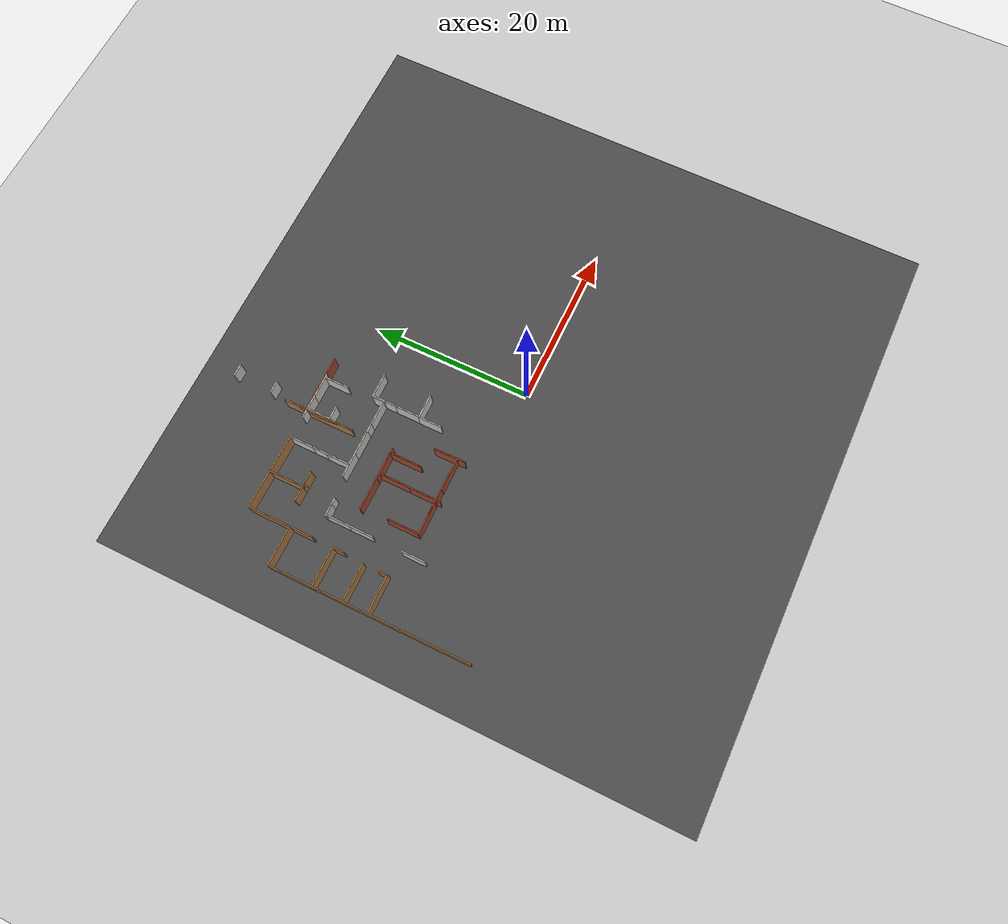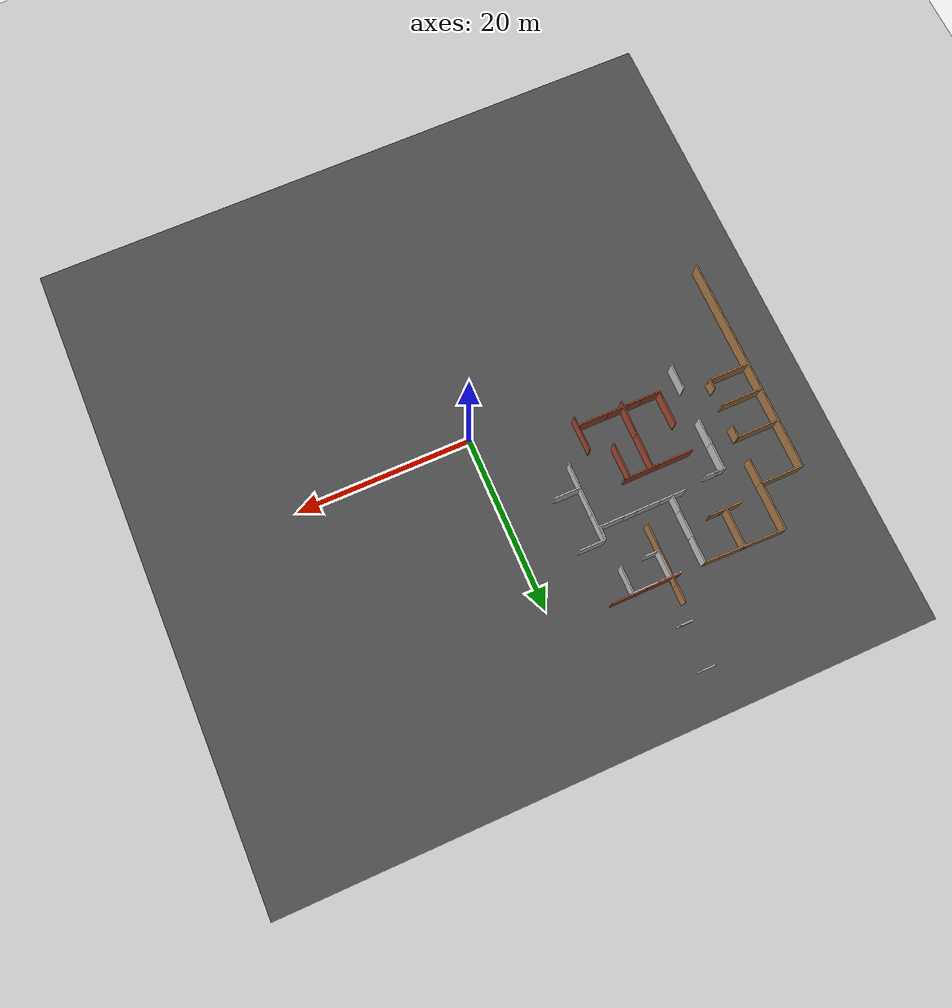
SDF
<sdf version="1.6">
 <world name="default">
  <model name="ground_plane">
   <static>1</static>
   <link name="link">
    <collision name="collision">
     <geometry><plane><normal>0 0 1</normal><size>100 100</size></plane></geometry>
     <surface><friction><ode><mu>100</mu><mu2>50</mu2></ode></friction></surface>
    </collision>
    <visual name="visual">
     <cast_shadows>0</cast_shadows>
     <geometry><plane><normal>0 0 1</normal><size>100 100</size></plane></geometry>
     <material>
      <script><uri>file://media/materials/scripts/gazebo.material</uri><name>Gazebo/Grey</name></script>
     </material>
    </visual>
   </link>
  </model>
  <model name="asphalt_plane">
   <static>1</static>
   <link name="link">
    <collision name="collision"><geometry><box><size>74 74 0.1</size></box></geometry></collision>
    <visual name="visual">
     <cast_shadows>0</cast_shadows>
     <geometry><box><size>74 74 0.1</size></box></geometry>
     <material>
      <script>
       <uri>model://asphalt_plane/materials/scripts</uri>
       <uri>model://asphalt_plane/materials/textures</uri>
       <name>vrc/asphalt</name>
      </script>
     </material>
    </visual>
   </link>
  </model>
  <model name="concrete_wall">
   <pose>-8.48668 14.4739 0 0 -0 0</pose>
   <link name="Wall_0">
    <collision name="Wall_0_Collision">
     <geometry><box><size>3 0.15 2.5</size></box></geometry>
     <pose>0 0 1.25 0 -0 0</pose>
    </collision>
    <visual name="Wall_0_Visual">
     <pose>0 0 1.25 0 -0 0</pose>
     <geometry><box><size>3 0.15 2.5</size></box></geometry>
     <material>
      <script><uri>file://media/materials/scripts/gazebo.material</uri><name>Gazebo/CeilingTiled</name></script>
      <ambient>1 1 1 1</ambient>
     </material>
     <meta><layer>0</layer></meta>
    </visual>
    <pose>0 0 0 0 -0 1.5708</pose>
   </link>
   <static>1</static>
  </model>
  <model name="concrete_wall_0">
   <pose>-8.48804 11.5232 0 0 -0 0</pose>
   <link name="Wall_0">
    <collision name="Wall_0_Collision">
     <geometry><box><size>3 0.15 2.5</size></box></geometry>
     <pose>0 0 1.25 0 -0 0</pose>
    </collision>
    <visual name="Wall_0_Visual">
     <pose>0 0 1.25 0 -0 0</pose>
     <geometry><box><size>3 0.15 2.5</size></box></geometry>
     <material>
      <script><uri>file://media/materials/scripts/gazebo.material</uri><name>Gazebo/CeilingTiled</name></script>
      <ambient>1 1 1 1</ambient>
     </material>
     <meta><layer>0</layer></meta>
    </visual>
    <pose>0 0 0 0 -0 1.5708</pose>
   </link>
   <static>1</static>
  </model>
  <model name="concrete_wall_6_clone_6">
   <pose>-7.05086 9.93464 0 0 -0 1.57079</pose>
   <link name="Wall_0">
    <collision name="Wall_0_Collision">
     <geometry><box><size>3 0.15 2.5</size></box></geometry>
     <pose>0 0 1.25 0 -0 0</pose>
    </collision>
    <visual name="Wall_0_Visual">
     <pose>0 0 1.25 0 -0 0</pose>
     <geometry><box><size>3 0.15 2.5</size></box></geometry>
     <material>
      <script><uri>file://media/materials/scripts/gazebo.material</uri><name>Gazebo/CeilingTiled</name></script>
      <ambient>1 1 1 1</ambient>
     </material>
     <meta><layer>0</layer></meta>
    </visual>
    <pose>0 0 0 0 -0 1.5708</pose>
   </link>
   <static>1</static>
  </model>
  <model name="concrete_wall_6_clone_7">
   <pose>-7.08346 16.0324 0 0 -0 1.57079</pose>
   <link name="Wall_0">
    <collision name="Wall_0_Collision">
     <geometry><box><size>3 0.15 2.5</size></box></geometry>
     <pose>0 0 1.25 0 -0 0</pose>
    </collision>
    <visual name="Wall_0_Visual">
     <pose>0 0 1.25 0 -0 0</pose>
     <geometry><box><size>3 0.15 2.5</size></box></geometry>
     <material>
      <script><uri>file://media/materials/scripts/gazebo.material</uri><name>Gazebo/CeilingTiled</name></script>
      <ambient>1 1 1 1</ambient>
     </material>
     <meta><layer>0</layer></meta>
    </visual>
    <pose>0 0 0 0 -0 1.5708</pose>
   </link>
   <static>1</static>
  </model>
  <model name="concrete_wall_6_clone_9">
   <pose>-17.1164 14.5581 0 0 -0 1.57079</pose>
   <link name="Wall_0">
    <collision name="Wall_0_Collision">
     <geometry><box><size>3 0.15 2.5</size></box></geometry>
     <pose>0 0 1.25 0 -0 0</pose>
    </collision>
    <visual name="Wall_0_Visual">
     <pose>0 0 1.25 0 -0 0</pose>
     <geometry><box><size>3 0.15 2.5</size></box></geometry>
     <material>
      <script><uri>file://media/materials/scripts/gazebo.material</uri><name>Gazebo/CeilingTiled</name></script>
      <ambient>1 1 1 1</ambient>
     </material>
     <meta><layer>0</layer></meta>
    </visual>
    <pose>0 0 0 0 -0 1.5708</pose>
   </link>
   <static>1</static>
  </model>
  <model name="concrete_wall_6_clone_10">
   <pose>-14.1567 14.5575 0 0 -0 1.57079</pose>
   <link name="Wall_0">
    <collision name="Wall_0_Collision">
     <geometry><box><size>3 0.15 2.5</size></box></geometry>
     <pose>0 0 1.25 0 -0 0</pose>
    </collision>
    <visual name="Wall_0_Visual">
     <pose>0 0 1.25 0 -0 0</pose>
     <geometry><box><size>3 0.15 2.5</size></box></geometry>
     <material>
      <script><uri>file://media/materials/scripts/gazebo.material</uri><name>Gazebo/CeilingTiled</name></script>
      <ambient>1 1 1 1</ambient>
     </material>
     <meta><layer>0</layer></meta>
    </visual>
    <pose>0 0 0 0 -0 1.5708</pose>
   </link>
   <static>1</static>
  </model>
  <model name="concrete_wall_6_clone_11">
   <pose>-10.1743 14.5482 0 0 -0 1.57079</pose>
   <link name="Wall_0">
    <collision name="Wall_0_Collision">
     <geometry><box><size>3 0.15 2.5</size></box></geometry>
     <pose>0 0 1.25 0 -0 0</pose>
    </collision>
    <visual name="Wall_0_Visual">
     <pose>0 0 1.25 0 -0 0</pose>
     <geometry><box><size>3 0.15 2.5</size></box></geometry>
     <material>
      <script><uri>file://media/materials/scripts/gazebo.material</uri><name>Gazebo/CeilingTiled</name></script>
      <ambient>1 1 1 1</ambient>
     </material>
     <meta><layer>0</layer></meta>
    </visual>
    <pose>0 0 0 0 -0 1.5708</pose>
   </link>
   <static>1</static>
  </model>
  <model name="concrete_wall_6_clone_12">
   <pose>-10.0053 22.2075 0 0 -0 1.57079</pose>
   <link name="Wall_0">
    <collision name="Wall_0_Collision">
     <geometry><box><size>3 0.15 2.5</size></box></geometry>
     <pose>0 0 1.25 0 -0 0</pose>
    </collision>
    <visual name="Wall_0_Visual">
     <pose>0 0 1.25 0 -0 0</pose>
     <geometry><box><size>3 0.15 2.5</size></box></geometry>
     <material>
      <script><uri>file://media/materials/scripts/gazebo.material</uri><name>Gazebo/CeilingTiled</name></script>
      <ambient>1 1 1 1</ambient>
     </material>
     <meta><layer>0</layer></meta>
    </visual>
    <pose>0 0 0 0 -0 1.5708</pose>
   </link>
   <static>1</static>
  </model>
  <model name="concrete_wall_6_clone_13">
   <pose>-12.862 22.2193 0 0 -0 1.57079</pose>
   <link name="Wall_0">
    <collision name="Wall_0_Collision">
     <geometry><box><size>3 0.15 2.5</size></box></geometry>
     <pose>0 0 1.25 0 -0 0</pose>
    </collision>
    <visual name="Wall_0_Visual">
     <pose>0 0 1.25 0 -0 0</pose>
     <geometry><box><size>3 0.15 2.5</size></box></geometry>
     <material>
      <script><uri>file://media/materials/scripts/gazebo.material</uri><name>Gazebo/CeilingTiled</name></script>
      <ambient>1 1 1 1</ambient>
     </material>
     <meta><layer>0</layer></meta>
    </visual>
    <pose>0 0 0 0 -0 1.5708</pose>
   </link>
   <static>1</static>
  </model>
  <model name="concrete_wall_10">
   <pose>-17.0452 17.8135 0 0 -0 0</pose>
   <link name="Wall_0">
    <collision name="Wall_0_Collision">
     <geometry><box><size>3 0.15 2.5</size></box></geometry>
     <pose>0 0 1.25 0 -0 0</pose>
    </collision>
    <visual name="Wall_0_Visual">
     <pose>0 0 1.25 0 -0 0</pose>
     <geometry><box><size>3 0.15 2.5</size></box></geometry>
     <material>
      <script><uri>file://media/materials/scripts/gazebo.material</uri><name>Gazebo/CeilingTiled</name></script>
      <ambient>1 1 1 1</ambient>
     </material>
     <meta><layer>0</layer></meta>
    </visual>
    <pose>0 0 0 0 -0 1.5708</pose>
   </link>
   <static>1</static>
  </model>
  <model name="concrete_wall_11">
   <pose>-17.0415 20.8179 0 0 -0 0</pose>
   <link name="Wall_0">
    <collision name="Wall_0_Collision">
     <geometry><box><size>3 0.15 2.5</size></box></geometry>
     <pose>0 0 1.25 0 -0 0</pose>
    </collision>
    <visual name="Wall_0_Visual">
     <pose>0 0 1.25 0 -0 0</pose>
     <geometry><box><size>3 0.15 2.5</size></box></geometry>
     <material>
      <script><uri>file://media/materials/scripts/gazebo.material</uri><name>Gazebo/CeilingTiled</name></script>
      <ambient>1 1 1 1</ambient>
     </material>
     <meta><layer>0</layer></meta>
    </visual>
    <pose>0 0 0 0 -0 1.5708</pose>
   </link>
   <static>1</static>
  </model>
  <model name="concrete_wall_12">
   <pose>-8.84643 20.6774 0 0 -0 0</pose>
   <link name="Wall_0">
    <collision name="Wall_0_Collision">
     <geometry><box><size>3 0.15 2.5</size></box></geometry>
     <pose>0 0 1.25 0 -0 0</pose>
    </collision>
    <visual name="Wall_0_Visual">
     <pose>0 0 1.25 0 -0 0</pose>
     <geometry><box><size>3 0.15 2.5</size></box></geometry>
     <material>
      <script><uri>file://media/materials/scripts/gazebo.material</uri><name>Gazebo/CeilingTiled</name></script>
      <ambient>1 1 1 1</ambient>
     </material>
     <meta><layer>0</layer></meta>
    </visual>
    <pose>0 0 0 0 -0 1.5708</pose>
   </link>
   <static>1</static>
  </model>
  <model name="concrete_wall_13">
   <pose>-17.0666 16.0035 0 0 -0 0</pose>
   <link name="Wall_0">
    <collision name="Wall_0_Collision">
     <geometry><box><size>3 0.15 2.5</size></box></geometry>
     <pose>0 0 1.25 0 -0 0</pose>
    </collision>
    <visual name="Wall_0_Visual">
     <pose>0 0 1.25 0 -0 0</pose>
     <geometry><box><size>3 0.15 2.5</size></box></geometry>
     <material>
      <script><uri>file://media/materials/scripts/gazebo.material</uri><name>Gazebo/CeilingTiled</name></script>
      <ambient>1 1 1 1</ambient>
     </material>
     <meta><layer>0</layer></meta>
    </visual>
    <pose>0 0 0 0 -0 1.5708</pose>
   </link>
   <static>1</static>
  </model>
  <model name="concrete_wall_14">
   <pose>-13.1615 20.7156 0 0 -0 0</pose>
   <link name="Wall_0">
    <collision name="Wall_0_Collision">
     <geometry><box><size>3 0.15 2.5</size></box></geometry>
     <pose>0 0 1.25 0 -0 0</pose>
    </collision>
    <visual name="Wall_0_Visual">
     <pose>0 0 1.25 0 -0 0</pose>
     <geometry><box><size>3 0.15 2.5</size></box></geometry>
     <material>
      <script><uri>file://media/materials/scripts/gazebo.material</uri><name>Gazebo/CeilingTiled</name></script>
      <ambient>1 1 1 1</ambient>
     </material>
     <meta><layer>0</layer></meta>
    </visual>
    <pose>0 0 0 0 -0 1.5708</pose>
   </link>
   <static>1</static>
  </model>
  <model name="willowgarage_v1_1">
   <pose>-14.3408 -3.86286 0 0 -0 0</pose>
   <link name="Wall_10">
    <collision name="Wall_10_Collision">
     <geometry><box><size>25.25 0.15 2.5</size></box></geometry>
     <pose>0 0 1.25 0 -0 0</pose>
    </collision>
    <visual name="Wall_10_Visual">
     <pose>0 0 1.25 0 -0 0</pose>
     <geometry><box><size>25.25 0.15 2.5</size></box></geometry>
     <material>
      <script><uri>file://media/materials/scripts/gazebo.material</uri><name>Gazebo/Wood</name></script>
      <ambient>1 1 1 1</ambient>
     </material>
     <meta><layer>0</layer></meta>
    </visual>
    <pose>-16.8068 8.447 0 0 -0 1.5708</pose>
   </link>
   <link name="Wall_11">
    <collision name="Wall_11_Collision">
     <geometry><box><size>5 0.15 2.5</size></box></geometry>
     <pose>0 0 1.25 0 -0 0</pose>
    </collision>
    <visual name="Wall_11_Visual">
     <pose>0 0 1.25 0 -0 0</pose>
     <geometry><box><size>5 0.15 2.5</size></box></geometry>
     <material>
      <script><uri>file://media/materials/scripts/gazebo.material</uri><name>Gazebo/Wood</name></script>
      <ambient>1 1 1 1</ambient>
     </material>
     <meta><layer>0</layer></meta>
    </visual>
    <pose>-14.3818 20.997 0 0 -0 0</pose>
   </link>
   <link name="Wall_119">
    <collision name="Wall_119_Collision">
     <geometry><box><size>0.15 0.15 2.5</size></box></geometry>
     <pose>0 0 1.25 0 -0 0</pose>
    </collision>
    <visual name="Wall_119_Visual">
     <pose>0 0 1.25 0 -0 0</pose>
     <geometry><box><size>0.15 0.15 2.5</size></box></geometry>
     <material>
      <script><uri>file://media/materials/scripts/gazebo.material</uri><name>Gazebo/Wood</name></script>
      <ambient>1 1 1 1</ambient>
     </material>
     <meta><layer>0</layer></meta>
    </visual>
    <pose>1.0355 26.1459 0 0 -0 0</pose>
   </link>
   <link name="Wall_1811">
    <collision name="Wall_1811_Collision">
     <geometry><box><size>5 0.15 2.5</size></box></geometry>
     <pose>0 0 1.25 0 -0 0</pose>
    </collision>
    <visual name="Wall_1811_Visual">
     <pose>0 0 1.25 0 -0 0</pose>
     <geometry><box><size>5 0.15 2.5</size></box></geometry>
     <material>
      <script><uri>file://media/materials/scripts/gazebo.material</uri><name>Gazebo/Wood</name></script>
      <ambient>1 1 1 1</ambient>
     </material>
     <meta><layer>0</layer></meta>
    </visual>
    <pose>1.0355 24.5959 0 0 0 -1.5708</pose>
   </link>
   <link name="Wall_9611">
    <collision name="Wall_9611_Collision">
     <geometry><box><size>5 0.15 2.5</size></box></geometry>
     <pose>0 0 1.25 0 -0 0</pose>
    </collision>
    <visual name="Wall_9611_Visual">
     <pose>0 0 1.25 0 -0 0</pose>
     <geometry><box><size>5 0.15 2.5</size></box></geometry>
     <material>
      <script><uri>file://media/materials/scripts/gazebo.material</uri><name>Gazebo/Wood</name></script>
      <ambient>1 1 1 1</ambient>
     </material>
     <meta><layer>0</layer></meta>
    </visual>
    <pose>1.0355 24.5959 0 0 0 -1.5708</pose>
   </link>
   <link name="Wall_10111">
    <collision name="Wall_10111_Collision">
     <geometry><box><size>5 0.15 2.5</size></box></geometry>
     <pose>0 0 1.25 0 -0 0</pose>
    </collision>
    <visual name="Wall_10111_Visual">
     <pose>0 0 1.25 0 -0 0</pose>
     <geometry><box><size>5 0.15 2.5</size></box></geometry>
     <material>
      <script><uri>file://media/materials/scripts/gazebo.material</uri><name>Gazebo/Wood</name></script>
      <ambient>1 1 1 1</ambient>
     </material>
     <meta><layer>0</layer></meta>
    </visual>
    <pose>1.0355 24.5959 0 0 0 -1.5708</pose>
   </link>
   <link name="Wall_10911">
    <collision name="Wall_10911_Collision">
     <geometry><box><size>5 0.15 2.5</size></box></geometry>
     <pose>0 0 1.25 0 -0 0</pose>
    </collision>
    <visual name="Wall_10911_Visual">
     <pose>0 0 1.25 0 -0 0</pose>
     <geometry><box><size>5 0.15 2.5</size></box></geometry>
     <material>
      <script><uri>file://media/materials/scripts/gazebo.material</uri><name>Gazebo/Wood</name></script>
      <ambient>1 1 1 1</ambient>
     </material>
     <meta><layer>0</layer></meta>
    </visual>
    <pose>1.0355 24.5959 0 0 0 -1.5708</pose>
   </link>
   <link name="Wall_11211">
    <collision name="Wall_11211_Collision">
     <geometry><box><size>5 0.15 2.5</size></box></geometry>
     <pose>0 0 1.25 0 -0 0</pose>
    </collision>
    <visual name="Wall_11211_Visual">
     <pose>0 0 1.25 0 -0 0</pose>
     <geometry><box><size>5 0.15 2.5</size></box></geometry>
     <material>
      <script><uri>file://media/materials/scripts/gazebo.material</uri><name>Gazebo/Wood</name></script>
      <ambient>1 1 1 1</ambient>
     </material>
     <meta><layer>0</layer></meta>
    </visual>
    <pose>1.0355 24.5959 0 0 0 -1.5708</pose>
   </link>
   <link name="Wall_11511">
    <collision name="Wall_11511_Collision">
     <geometry><box><size>5 0.15 2.5</size></box></geometry>
     <pose>0 0 1.25 0 -0 0</pose>
    </collision>
    <visual name="Wall_11511_Visual">
     <pose>0 0 1.25 0 -0 0</pose>
     <geometry><box><size>5 0.15 2.5</size></box></geometry>
     <material>
      <script><uri>file://media/materials/scripts/gazebo.material</uri><name>Gazebo/Wood</name></script>
      <ambient>1 1 1 1</ambient>
     </material>
     <meta><layer>0</layer></meta>
    </visual>
    <pose>1.0355 24.5959 0 0 0 -1.5708</pose>
   </link>
   <link name="Wall_12311">
    <collision name="Wall_12311_Collision">
     <geometry><box><size>5 0.15 2.5</size></box></geometry>
     <pose>0 0 1.25 0 -0 0</pose>
    </collision>
    <visual name="Wall_12311_Visual">
     <pose>0 0 1.25 0 -0 0</pose>
     <geometry><box><size>5 0.15 2.5</size></box></geometry>
     <material>
      <script><uri>file://media/materials/scripts/gazebo.material</uri><name>Gazebo/Wood</name></script>
      <ambient>1 1 1 1</ambient>
     </material>
     <meta><layer>0</layer></meta>
    </visual>
    <pose>1.0355 24.5959 0 0 0 -1.5708</pose>
   </link>
   <link name="Wall_12011">
    <collision name="Wall_12011_Collision">
     <geometry><box><size>5 0.15 2.5</size></box></geometry>
     <pose>0 0 1.25 0 -0 0</pose>
    </collision>
    <visual name="Wall_12011_Visual">
     <pose>0 0 1.25 0 -0 0</pose>
     <geometry><box><size>5 0.15 2.5</size></box></geometry>
     <material>
      <script><uri>file://media/materials/scripts/gazebo.material</uri><name>Gazebo/Wood</name></script>
      <ambient>1 1 1 1</ambient>
     </material>
     <meta><layer>0</layer></meta>
    </visual>
    <pose>1.0355 24.5959 0 0 0 -1.5708</pose>
   </link>
   <link name="Wall_1812">
    <collision name="Wall_1812_Collision">
     <geometry><box><size>5 0.15 2.5</size></box></geometry>
     <pose>0 0 1.25 0 -0 0</pose>
    </collision>
    <visual name="Wall_1812_Visual">
     <pose>0 0 1.25 0 -0 0</pose>
     <geometry><box><size>5 0.15 2.5</size></box></geometry>
     <material>
      <script><uri>file://media/materials/scripts/gazebo.material</uri><name>Gazebo/Wood</name></script>
      <ambient>1 1 1 1</ambient>
     </material>
     <meta><layer>0</layer></meta>
    </visual>
    <pose>1.0355 24.5959 0 0 0 -1.5708</pose>
   </link>
   <link name="Wall_1813">
    <collision name="Wall_1813_Collision">
     <geometry><box><size>9 0.15 2.5</size></box></geometry>
     <pose>0 0 1.25 0 -0 0</pose>
    </collision>
    <visual name="Wall_1813_Visual">
     <pose>0 0 1.25 0 -0 0</pose>
     <geometry><box><size>9 0.15 2.5</size></box></geometry>
     <material>
      <script><uri>file://media/materials/scripts/gazebo.material</uri><name>Gazebo/Wood</name></script>
      <ambient>1 1 1 1</ambient>
     </material>
     <meta><layer>0</layer></meta>
    </visual>
    <pose>1.0355 24.5959 0 0 0 -1.5708</pose>
   </link>
   <link name="Wall_9612">
    <collision name="Wall_9612_Collision">
     <geometry><box><size>5 0.15 2.5</size></box></geometry>
     <pose>0 0 1.25 0 -0 0</pose>
    </collision>
    <visual name="Wall_9612_Visual">
     <pose>0 0 1.25 0 -0 0</pose>
     <geometry><box><size>5 0.15 2.5</size></box></geometry>
     <material>
      <script><uri>file://media/materials/scripts/gazebo.material</uri><name>Gazebo/Wood</name></script>
      <ambient>1 1 1 1</ambient>
     </material>
     <meta><layer>0</layer></meta>
    </visual>
    <pose>1.0355 24.5959 0 0 0 -1.5708</pose>
   </link>
   <link name="Wall_10112">
    <collision name="Wall_10112_Collision">
     <geometry><box><size>5 0.15 2.5</size></box></geometry>
     <pose>0 0 1.25 0 -0 0</pose>
    </collision>
    <visual name="Wall_10112_Visual">
     <pose>0 0 1.25 0 -0 0</pose>
     <geometry><box><size>5 0.15 2.5</size></box></geometry>
     <material>
      <script><uri>file://media/materials/scripts/gazebo.material</uri><name>Gazebo/Wood</name></script>
      <ambient>1 1 1 1</ambient>
     </material>
     <meta><layer>0</layer></meta>
    </visual>
    <pose>1.0355 24.5959 0 0 0 -1.5708</pose>
   </link>
   <link name="Wall_10912">
    <collision name="Wall_10912_Collision">
     <geometry><box><size>5 0.15 2.5</size></box></geometry>
     <pose>0 0 1.25 0 -0 0</pose>
    </collision>
    <visual name="Wall_10912_Visual">
     <pose>0 0 1.25 0 -0 0</pose>
     <geometry><box><size>5 0.15 2.5</size></box></geometry>
     <material>
      <script><uri>file://media/materials/scripts/gazebo.material</uri><name>Gazebo/Wood</name></script>
      <ambient>1 1 1 1</ambient>
     </material>
     <meta><layer>0</layer></meta>
    </visual>
    <pose>1.0355 24.5959 0 0 0 -1.5708</pose>
   </link>
   <link name="Wall_11212">
    <collision name="Wall_11212_Collision">
     <geometry><box><size>5 0.15 2.5</size></box></geometry>
     <pose>0 0 1.25 0 -0 0</pose>
    </collision>
    <visual name="Wall_11212_Visual">
     <pose>0 0 1.25 0 -0 0</pose>
     <geometry><box><size>5 0.15 2.5</size></box></geometry>
     <material>
      <script><uri>file://media/materials/scripts/gazebo.material</uri><name>Gazebo/Wood</name></script>
      <ambient>1 1 1 1</ambient>
     </material>
     <meta><layer>0</layer></meta>
    </visual>
    <pose>1.0355 24.5959 0 0 0 -1.5708</pose>
   </link>
   <link name="Wall_11512">
    <collision name="Wall_11512_Collision">
     <geometry><box><size>5 0.15 2.5</size></box></geometry>
     <pose>0 0 1.25 0 -0 0</pose>
    </collision>
    <visual name="Wall_11512_Visual">
     <pose>0 0 1.25 0 -0 0</pose>
     <geometry><box><size>5 0.15 2.5</size></box></geometry>
     <material>
      <script><uri>file://media/materials/scripts/gazebo.material</uri><name>Gazebo/Wood</name></script>
      <ambient>1 1 1 1</ambient>
     </material>
     <meta><layer>0</layer></meta>
    </visual>
    <pose>1.0355 24.5959 0 0 0 -1.5708</pose>
   </link>
   <link name="Wall_12312">
    <collision name="Wall_12312_Collision">
     <geometry><box><size>5 0.15 2.5</size></box></geometry>
     <pose>0 0 1.25 0 -0 0</pose>
    </collision>
    <visual name="Wall_12312_Visual">
     <pose>0 0 1.25 0 -0 0</pose>
     <geometry><box><size>5 0.15 2.5</size></box></geometry>
     <material>
      <script><uri>file://media/materials/scripts/gazebo.material</uri><name>Gazebo/Wood</name></script>
      <ambient>1 1 1 1</ambient>
     </material>
     <meta><layer>0</layer></meta>
    </visual>
    <pose>1.0355 24.5959 0 0 0 -1.5708</pose>
   </link>
   <link name="Wall_12012">
    <collision name="Wall_12012_Collision">
     <geometry><box><size>5 0.15 2.5</size></box></geometry>
     <pose>0 0 1.25 0 -0 0</pose>
    </collision>
    <visual name="Wall_12012_Visual">
     <pose>0 0 1.25 0 -0 0</pose>
     <geometry><box><size>5 0.15 2.5</size></box></geometry>
     <material>
      <script><uri>file://media/materials/scripts/gazebo.material</uri><name>Gazebo/Wood</name></script>
      <ambient>1 1 1 1</ambient>
     </material>
     <meta><layer>0</layer></meta>
    </visual>
    <pose>1.0355 24.5959 0 0 0 -1.5708</pose>
   </link>
   <link name="Wall_127">
    <collision name="Wall_127_Collision">
     <geometry><box><size>4.5 0.15 2.5</size></box></geometry>
     <pose>0 0 1.25 0 -0 0</pose>
    </collision>
    <visual name="Wall_127_Visual">
     <pose>0 0 1.25 0 -0 0</pose>
     <geometry><box><size>4.5 0.15 2.5</size></box></geometry>
     <material>
      <script><uri>file://media/materials/scripts/gazebo.material</uri><name>Gazebo/Wood</name></script>
      <ambient>1 1 1 1</ambient>
     </material>
     <meta><layer>0</layer></meta>
    </visual>
    <pose>-7.28883 24.1165 0 0 0 -1.5708</pose>
   </link>
   <link name="Wall_128">
    <collision name="Wall_128_Collision">
     <geometry><box><size>2 0.15 2.5</size></box></geometry>
     <pose>0 0 1.25 0 -0 0</pose>
    </collision>
    <visual name="Wall_128_Visual">
     <pose>0 0 1.25 0 -0 0</pose>
     <geometry><box><size>2 0.15 2.5</size></box></geometry>
     <material>
      <script><uri>file://media/materials/scripts/gazebo.material</uri><name>Gazebo/Wood</name></script>
      <ambient>1 1 1 1</ambient>
     </material>
     <meta><layer>0</layer></meta>
    </visual>
    <pose>-6.36383 21.9415 0 0 -0 0</pose>
   </link>
   <link name="Wall_129">
    <collision name="Wall_129_Collision">
     <geometry><box><size>3.75 0.15 2.5</size></box></geometry>
     <pose>0 0 1.25 0 -0 0</pose>
    </collision>
    <visual name="Wall_129_Visual">
     <pose>0 0 1.25 0 -0 0</pose>
     <geometry><box><size>3.75 0.15 2.5</size></box></geometry>
     <material>
      <script><uri>file://media/materials/scripts/gazebo.material</uri><name>Gazebo/Wood</name></script>
      <ambient>1 1 1 1</ambient>
     </material>
     <meta><layer>0</layer></meta>
    </visual>
    <pose>-7.23883 21.9415 0 0 -0 3.14159</pose>
   </link>
   <link name="Wall_13">
    <collision name="Wall_13_Collision">
     <geometry><box><size>5.5 0.15 2.5</size></box></geometry>
     <pose>0 0 1.25 0 -0 0</pose>
    </collision>
    <visual name="Wall_13_Visual">
     <pose>0 0 1.25 0 -0 0</pose>
     <geometry><box><size>5.5 0.15 2.5</size></box></geometry>
     <material>
      <script><uri>file://media/materials/scripts/gazebo.material</uri><name>Gazebo/Wood</name></script>
      <ambient>1 1 1 1</ambient>
     </material>
     <meta><layer>0</layer></meta>
    </visual>
    <pose>-11.9568 23.672 0 0 -0 1.5708</pose>
   </link>
   <link name="Wall_136">
    <collision name="Wall_136_Collision">
     <geometry><box><size>3 0.15 2.5</size></box></geometry>
     <pose>0 0 1.25 0 -0 0</pose>
    </collision>
    <visual name="Wall_136_Visual">
     <pose>0 0 1.25 0 -0 0</pose>
     <geometry><box><size>3 0.15 2.5</size></box></geometry>
     <material>
      <script><uri>file://media/materials/scripts/gazebo.material</uri><name>Gazebo/Wood</name></script>
      <ambient>1 1 1 1</ambient>
     </material>
     <meta><layer>0</layer></meta>
    </visual>
    <pose>-11.9568 19.572 0 0 0 -1.5708</pose>
   </link>
   <link name="Wall_138">
    <collision name="Wall_138_Collision">
     <geometry><box><size>5 0.15 2.5</size></box></geometry>
     <pose>0 0 1.25 0 -0 0</pose>
    </collision>
    <visual name="Wall_138_Visual">
     <pose>0 0 1.25 0 -0 0</pose>
     <geometry><box><size>5 0.15 2.5</size></box></geometry>
     <material>
      <script><uri>file://media/materials/scripts/gazebo.material</uri><name>Gazebo/Wood</name></script>
      <ambient>1 1 1 1</ambient>
     </material>
     <meta><layer>0</layer></meta>
    </visual>
    <pose>-14.4007 15.4626 0 0 -0 0</pose>
   </link>
   <link name="Wall_139">
    <collision name="Wall_139_Collision">
     <geometry><box><size>1.5 0.15 2.5</size></box></geometry>
     <pose>0 0 1.25 0 -0 0</pose>
    </collision>
    <visual name="Wall_139_Visual">
     <pose>0 0 1.25 0 -0 0</pose>
     <geometry><box><size>1.5 0.15 2.5</size></box></geometry>
     <material>
      <script><uri>file://media/materials/scripts/gazebo.material</uri><name>Gazebo/Wood</name></script>
      <ambient>1 1 1 1</ambient>
     </material>
     <meta><layer>0</layer></meta>
    </visual>
    <pose>-11.9757 14.7876 0 0 0 -1.5708</pose>
   </link>
   <link name="Wall_14">
    <collision name="Wall_14_Collision">
     <geometry><box><size>9.25187 0.15 2.5</size></box></geometry>
     <pose>0 0 1.25 0 -0 0</pose>
    </collision>
    <visual name="Wall_14_Visual">
     <pose>0 0 1.25 0 -0 0</pose>
     <geometry><box><size>9.25187 0.15 2.5</size></box></geometry>
     <material>
      <script><uri>file://media/materials/scripts/gazebo.material</uri><name>Gazebo/Wood</name></script>
      <ambient>1 1 1 1</ambient>
     </material>
     <meta><layer>0</layer></meta>
    </visual>
    <pose>-7.40679 26.2547 0 0 0 -0.020281</pose>
   </link>
   <link name="Wall_143">
    <collision name="Wall_143_Collision">
     <geometry><box><size>4.75 0.15 2.5</size></box></geometry>
     <pose>0 0 1.25 0 -0 0</pose>
    </collision>
    <visual name="Wall_143_Visual">
     <pose>0 0 1.25 0 -0 0</pose>
     <geometry><box><size>4.75 0.15 2.5</size></box></geometry>
     <material>
      <script><uri>file://media/materials/scripts/gazebo.material</uri><name>Gazebo/Wood</name></script>
      <ambient>1 1 1 1</ambient>
     </material>
     <meta><layer>0</layer></meta>
    </visual>
    <pose>-14.4641 11.5863 0 0 -0 0</pose>
   </link>
   <link name="Wall_149">
    <collision name="Wall_149_Collision">
     <geometry><box><size>1.25 0.15 2.5</size></box></geometry>
     <pose>0 0 1.25 0 -0 0</pose>
    </collision>
    <visual name="Wall_149_Visual">
     <pose>0 0 1.25 0 -0 0</pose>
     <geometry><box><size>1.25 0.15 2.5</size></box></geometry>
     <material>
      <script><uri>file://media/materials/scripts/gazebo.material</uri><name>Gazebo/Wood</name></script>
      <ambient>1 1 1 1</ambient>
     </material>
     <meta><layer>0</layer></meta>
    </visual>
    <pose>-12.1304 9.03417 0 0 0 -1.5708</pose>
   </link>
   <link name="Wall_150">
    <collision name="Wall_150_Collision">
     <geometry><box><size>4.75 0.15 2.5</size></box></geometry>
     <pose>0 0 1.25 0 -0 0</pose>
    </collision>
    <visual name="Wall_150_Visual">
     <pose>0 0 1.25 0 -0 0</pose>
     <geometry><box><size>4.75 0.15 2.5</size></box></geometry>
     <material>
      <script><uri>file://media/materials/scripts/gazebo.material</uri><name>Gazebo/Wood</name></script>
      <ambient>1 1 1 1</ambient>
     </material>
     <meta><layer>0</layer></meta>
    </visual>
    <pose>-14.4304 8.48417 0 0 -0 3.14159</pose>
   </link>
   <static>1</static>
  </model>
  <model name="concrete_wall_6_clone_8_clone_0">
   <pose>-8.61044 15.2185 0 0 -0 0</pose>
   <link name="Wall_0">
    <collision name="Wall_0_Collision">
     <geometry><box><size>1.5 0.15 2.5</size></box></geometry>
     <pose>0 0 1.25 0 -0 0</pose>
    </collision>
    <visual name="Wall_0_Visual">
     <pose>0 0 1.25 0 -0 0</pose>
     <geometry><box><size>1.5 0.15 2.5</size></box></geometry>
     <material>
      <script><uri>file://media/materials/scripts/gazebo.material</uri><name>Gazebo/CeilingTiled</name></script>
      <ambient>1 1 1 1</ambient>
     </material>
     <meta><layer>0</layer></meta>
    </visual>
    <pose>0 0 0 0 -0 1.5708</pose>
   </link>
   <static>1</static>
  </model>
  <model name="concrete_wall_6_clone_8_clone_2">
   <pose>-12.3418 19.2744 0 0 -0 1.57079</pose>
   <link name="Wall_0">
    <collision name="Wall_0_Collision">
     <geometry><box><size>1.5 0.15 2.5</size></box></geometry>
     <pose>0 0 1.25 0 -0 0</pose>
    </collision>
    <visual name="Wall_0_Visual">
     <pose>0 0 1.25 0 -0 0</pose>
     <geometry><box><size>1.5 0.15 2.5</size></box></geometry>
     <material>
      <script><uri>file://media/materials/scripts/gazebo.material</uri><name>Gazebo/CeilingTiled</name></script>
      <ambient>1 1 1 1</ambient>
     </material>
     <meta><layer>0</layer></meta>
    </visual>
    <pose>0 0 0 0 -0 1.5708</pose>
   </link>
   <static>1</static>
  </model>
  <model name="concrete_wall_6_clone_8_clone_2_clone">
   <pose>-12.5303 27.1237 0 0 -0 1.57079</pose>
   <link name="Wall_0">
    <collision name="Wall_0_Collision">
     <geometry><box><size>1.5 0.15 2.5</size></box></geometry>
     <pose>0 0 1.25 0 -0 0</pose>
    </collision>
    <visual name="Wall_0_Visual">
     <pose>0 0 1.25 0 -0 0</pose>
     <geometry><box><size>1.5 0.15 2.5</size></box></geometry>
     <material>
      <script><uri>file://media/materials/scripts/gazebo.material</uri><name>Gazebo/CeilingTiled</name></script>
      <ambient>1 1 1 1</ambient>
     </material>
     <meta><layer>0</layer></meta>
    </visual>
    <pose>0 0 0 0 -0 1.5708</pose>
   </link>
   <static>1</static>
  </model>
  <model name="concrete_wall_6_clone_8_clone_2_clone_0">
   <pose>-12.5067 32.0839 0 0 -0 1.57079</pose>
   <link name="Wall_0">
    <collision name="Wall_0_Collision">
     <geometry><box><size>1.5 0.15 2.5</size></box></geometry>
     <pose>0 0 1.25 0 -0 0</pose>
    </collision>
    <visual name="Wall_0_Visual">
     <pose>0 0 1.25 0 -0 0</pose>
     <geometry><box><size>1.5 0.15 2.5</size></box></geometry>
     <material>
      <script><uri>file://media/materials/scripts/gazebo.material</uri><name>Gazebo/CeilingTiled</name></script>
      <ambient>1 1 1 1</ambient>
     </material>
     <meta><layer>0</layer></meta>
    </visual>
    <pose>0 0 0 0 -0 1.5708</pose>
   </link>
   <static>1</static>
  </model>
  <model name="brick_wall_1_clone_17">
   <pose>-8.30413 22.3435 0 0 -0 0</pose>
   <link name="Wall_0">
    <collision name="Wall_0_Collision">
     <geometry><box><size>4 0.15 2.5</size></box></geometry>
     <pose>0 0 1.25 0 -0 0</pose>
    </collision>
    <visual name="Wall_0_Visual">
     <pose>0 0 1.25 0 -0 0</pose>
     <geometry><box><size>4 0.15 2.5</size></box></geometry>
     <material>
      <script><uri>file://media/materials/scripts/gazebo.material</uri><name>Gazebo/Bricks</name></script>
      <ambient>1 1 1 1</ambient>
     </material>
     <meta><layer>0</layer></meta>
    </visual>
   </link>
   <static>1</static>
  </model>
  <model name="brick_wall_1_clone_18">
   <pose>-12.1817 22.3187 0 0 -0 0</pose>
   <link name="Wall_0">
    <collision name="Wall_0_Collision">
     <geometry><box><size>4 0.15 2.5</size></box></geometry>
     <pose>0 0 1.25 0 -0 0</pose>
    </collision>
    <visual name="Wall_0_Visual">
     <pose>0 0 1.25 0 -0 0</pose>
     <geometry><box><size>4 0.15 2.5</size></box></geometry>
     <material>
      <script><uri>file://media/materials/scripts/gazebo.material</uri><name>Gazebo/Bricks</name></script>
      <ambient>1 1 1 1</ambient>
     </material>
     <meta><layer>0</layer></meta>
    </visual>
   </link>
   <static>1</static>
  </model>
  <model name="concrete_wall_1_clone">
   <pose>-8.5106 8.53573 0 0 -0 0</pose>
   <link name="Wall_0">
    <collision name="Wall_0_Collision">
     <geometry><box><size>3 0.15 2.5</size></box></geometry>
     <pose>0 0 1.25 0 -0 0</pose>
    </collision>
    <visual name="Wall_0_Visual">
     <pose>0 0 1.25 0 -0 0</pose>
     <geometry><box><size>3 0.15 2.5</size></box></geometry>
     <material>
      <script><uri>file://media/materials/scripts/gazebo.material</uri><name>Gazebo/CeilingTiled</name></script>
      <ambient>1 1 1 1</ambient>
     </material>
     <meta><layer>0</layer></meta>
    </visual>
    <pose>0 0 0 0 -0 1.5708</pose>
   </link>
   <static>1</static>
  </model>
  <model name="concrete_wall_6_clone_8_clone_3_clone">
   <pose>-12.1335 14.5637 0 0 -0 1.57079</pose>
   <link name="Wall_0">
    <collision name="Wall_0_Collision">
     <geometry><box><size>1.5 0.15 2.5</size></box></geometry>
     <pose>0 0 1.25 0 -0 0</pose>
    </collision>
    <visual name="Wall_0_Visual">
     <pose>0 0 1.25 0 -0 0</pose>
     <geometry><box><size>1.5 0.15 2.5</size></box></geometry>
     <material>
      <script><uri>file://media/materials/scripts/gazebo.material</uri><name>Gazebo/CeilingTiled</name></script>
      <ambient>1 1 1 1</ambient>
     </material>
     <meta><layer>0</layer></meta>
    </visual>
    <pose>0 0 0 0 -0 1.5708</pose>
   </link>
   <static>1</static>
  </model>
  <model name="concrete_wall_6_clone_8_clone_3_clone_0">
   <pose>-22.8104 14.0975 0 0 -0 1.57079</pose>
   <link name="Wall_0">
    <collision name="Wall_0_Collision">
     <geometry><box><size>1.5 0.15 2.5</size></box></geometry>
     <pose>0 0 1.25 0 -0 0</pose>
    </collision>
    <visual name="Wall_0_Visual">
     <pose>0 0 1.25 0 -0 0</pose>
     <geometry><box><size>1.5 0.15 2.5</size></box></geometry>
     <material>
      <script><uri>file://media/materials/scripts/gazebo.material</uri><name>Gazebo/CeilingTiled</name></script>
      <ambient>1 1 1 1</ambient>
     </material>
     <meta><layer>0</layer></meta>
    </visual>
    <pose>0 0 0 0 -0 1.5708</pose>
   </link>
   <static>1</static>
  </model>
  <model name="concrete_wall_6_clone_8_clone_3_clone_1">
   <pose>-21.9948 14.1079 0 0 -0 1.57079</pose>
   <link name="Wall_0">
    <collision name="Wall_0_Collision">
     <geometry><box><size>1.5 0.15 2.5</size></box></geometry>
     <pose>0 0 1.25 0 -0 0</pose>
    </collision>
    <visual name="Wall_0_Visual">
     <pose>0 0 1.25 0 -0 0</pose>
     <geometry><box><size>1.5 0.15 2.5</size></box></geometry>
     <material>
      <script><uri>file://media/materials/scripts/gazebo.material</uri><name>Gazebo/CeilingTiled</name></script>
      <ambient>1 1 1 1</ambient>
     </material>
     <meta><layer>0</layer></meta>
    </visual>
    <pose>0 0 0 0 -0 1.5708</pose>
   </link>
   <static>1</static>
  </model>
  <model name="concrete_wall_13_clone">
   <pose>-23.3829 12.5536 0 0 -0 0</pose>
   <link name="Wall_0">
    <collision name="Wall_0_Collision">
     <geometry><box><size>3 0.15 2.5</size></box></geometry>
     <pose>0 0 1.25 0 -0 0</pose>
    </collision>
    <visual name="Wall_0_Visual">
     <pose>0 0 1.25 0 -0 0</pose>
     <geometry><box><size>3 0.15 2.5</size></box></geometry>
     <material>
      <script><uri>file://media/materials/scripts/gazebo.material</uri><name>Gazebo/CeilingTiled</name></script>
      <ambient>1 1 1 1</ambient>
     </material>
     <meta><layer>0</layer></meta>
    </visual>
    <pose>0 0 0 0 -0 1.5708</pose>
   </link>
   <static>1</static>
  </model>
  <model name="concrete_wall_13_clone_0">
   <pose>-23.3903 9.60158 0 0 -0 0</pose>
   <link name="Wall_0">
    <collision name="Wall_0_Collision">
     <geometry><box><size>3 0.15 2.5</size></box></geometry>
     <pose>0 0 1.25 0 -0 0</pose>
    </collision>
    <visual name="Wall_0_Visual">
     <pose>0 0 1.25 0 -0 0</pose>
     <geometry><box><size>3 0.15 2.5</size></box></geometry>
     <material>
      <script><uri>file://media/materials/scripts/gazebo.material</uri><name>Gazebo/CeilingTiled</name></script>
      <ambient>1 1 1 1</ambient>
     </material>
     <meta><layer>0</layer></meta>
    </visual>
    <pose>0 0 0 0 -0 1.5708</pose>
   </link>
   <static>1</static>
  </model>
  <model name="concrete_wall_13_clone_1">
   <pose>-23.4076 2.93482 0 0 -0 0</pose>
   <link name="Wall_0">
    <collision name="Wall_0_Collision">
     <geometry><box><size>3 0.15 2.5</size></box></geometry>
     <pose>0 0 1.25 0 -0 0</pose>
    </collision>
    <visual name="Wall_0_Visual">
     <pose>0 0 1.25 0 -0 0</pose>
     <geometry><box><size>3 0.15 2.5</size></box></geometry>
     <material>
      <script><uri>file://media/materials/scripts/gazebo.material</uri><name>Gazebo/CeilingTiled</name></script>
      <ambient>1 1 1 1</ambient>
     </material>
     <meta><layer>0</layer></meta>
    </visual>
    <pose>0 0 0 0 -0 1.5708</pose>
   </link>
   <static>1</static>
  </model>
  <model name="brick_wall_1_clone_19">
   <pose>-19.1813 10.939 0 0 -0 0</pose>
   <link name="Wall_0">
    <collision name="Wall_0_Collision">
     <geometry><box><size>4 0.15 2.5</size></box></geometry>
     <pose>0 0 1.25 0 -0 0</pose>
    </collision>
    <visual name="Wall_0_Visual">
     <pose>0 0 1.25 0 -0 0</pose>
     <geometry><box><size>4 0.15 2.5</size></box></geometry>
     <material>
      <script><uri>file://media/materials/scripts/gazebo.material</uri><name>Gazebo/Bricks</name></script>
      <ambient>1 1 1 1</ambient>
     </material>
     <meta><layer>0</layer></meta>
    </visual>
   </link>
   <static>1</static>
  </model>
  <model name="brick_wall_1_clone_20">
   <pose>-15.1881 10.949 0 0 -0 0.013445</pose>
   <link name="Wall_0">
    <collision name="Wall_0_Collision">
     <geometry><box><size>4 0.15 2.5</size></box></geometry>
     <pose>0 0 1.25 0 -0 0</pose>
    </collision>
    <visual name="Wall_0_Visual">
     <pose>0 0 1.25 0 -0 0</pose>
     <geometry><box><size>4 0.15 2.5</size></box></geometry>
     <material>
      <script><uri>file://media/materials/scripts/gazebo.material</uri><name>Gazebo/Bricks</name></script>
      <ambient>1 1 1 1</ambient>
     </material>
     <meta><layer>0</layer></meta>
    </visual>
   </link>
   <static>1</static>
  </model>
  <model name="brick_wall_1_clone_21">
   <pose>-11.1813 4.58416 0 0 0 -1.55654</pose>
   <link name="Wall_0">
    <collision name="Wall_0_Collision">
     <geometry><box><size>4 0.15 2.5</size></box></geometry>
     <pose>0 0 1.25 0 -0 0</pose>
    </collision>
    <visual name="Wall_0_Visual">
     <pose>0 0 1.25 0 -0 0</pose>
     <geometry><box><size>4 0.15 2.5</size></box></geometry>
     <material>
      <script><uri>file://media/materials/scripts/gazebo.material</uri><name>Gazebo/Bricks</name></script>
      <ambient>1 1 1 1</ambient>
     </material>
     <meta><layer>0</layer></meta>
    </visual>
   </link>
   <static>1</static>
  </model>
  <model name="brick_wall_1_clone_21_clone">
   <pose>-20.8477 5.6304 0 0 -0 1.57</pose>
   <link name="Wall_0">
    <collision name="Wall_0_Collision">
     <geometry><box><size>4 0.15 2.5</size></box></geometry>
     <pose>0 0 1.25 0 -0 0</pose>
    </collision>
    <visual name="Wall_0_Visual">
     <pose>0 0 1.25 0 -0 0</pose>
     <geometry><box><size>4 0.15 2.5</size></box></geometry>
     <material>
      <script><uri>file://media/materials/scripts/gazebo.material</uri><name>Gazebo/Bricks</name></script>
      <ambient>1 1 1 1</ambient>
     </material>
     <meta><layer>0</layer></meta>
    </visual>
   </link>
   <static>1</static>
  </model>
  <model name="brick_wall_1_clone_21_clone_0">
   <pose>-16.5226 8.90744 0 0 -0 1.57</pose>
   <link name="Wall_0">
    <collision name="Wall_0_Collision">
     <geometry><box><size>4 0.15 2.5</size></box></geometry>
     <pose>0 0 1.25 0 -0 0</pose>
    </collision>
    <visual name="Wall_0_Visual">
     <pose>0 0 1.25 0 -0 0</pose>
     <geometry><box><size>4 0.15 2.5</size></box></geometry>
     <material>
      <script><uri>file://media/materials/scripts/gazebo.material</uri><name>Gazebo/Bricks</name></script>
      <ambient>1 1 1 1</ambient>
     </material>
     <meta><layer>0</layer></meta>
    </visual>
   </link>
   <static>1</static>
  </model>
  <model name="brick_wall_1_clone_21_clone_1">
   <pose>-16.5415 5.05933 0 0 -0 1.57</pose>
   <link name="Wall_0">
    <collision name="Wall_0_Collision">
     <geometry><box><size>4 0.15 2.5</size></box></geometry>
     <pose>0 0 1.25 0 -0 0</pose>
    </collision>
    <visual name="Wall_0_Visual">
     <pose>0 0 1.25 0 -0 0</pose>
     <geometry><box><size>4 0.15 2.5</size></box></geometry>
     <material>
      <script><uri>file://media/materials/scripts/gazebo.material</uri><name>Gazebo/Bricks</name></script>
      <ambient>1 1 1 1</ambient>
     </material>
     <meta><layer>0</layer></meta>
    </visual>
   </link>
   <static>1</static>
  </model>
  <model name="brick_wall_1_clone_20_clone">
   <pose>-13.1498 3.63703 0 0 -0 0</pose>
   <link name="Wall_0">
    <collision name="Wall_0_Collision">
     <geometry><box><size>4 0.15 2.5</size></box></geometry>
     <pose>0 0 1.25 0 -0 0</pose>
    </collision>
    <visual name="Wall_0_Visual">
     <pose>0 0 1.25 0 -0 0</pose>
     <geometry><box><size>4 0.15 2.5</size></box></geometry>
     <material>
      <script><uri>file://media/materials/scripts/gazebo.material</uri><name>Gazebo/Bricks</name></script>
      <ambient>1 1 1 1</ambient>
     </material>
     <meta><layer>0</layer></meta>
    </visual>
   </link>
   <static>1</static>
  </model>
  <model name="brick_wall_1_clone_20_clone_0">
   <pose>-16.7099 3.65436 0 0 -0 0</pose>
   <link name="Wall_0">
    <collision name="Wall_0_Collision">
     <geometry><box><size>4 0.15 2.5</size></box></geometry>
     <pose>0 0 1.25 0 -0 0</pose>
    </collision>
    <visual name="Wall_0_Visual">
     <pose>0 0 1.25 0 -0 0</pose>
     <geometry><box><size>4 0.15 2.5</size></box></geometry>
     <material>
      <script><uri>file://media/materials/scripts/gazebo.material</uri><name>Gazebo/Bricks</name></script>
      <ambient>1 1 1 1</ambient>
     </material>
     <meta><layer>0</layer></meta>
    </visual>
   </link>
   <static>1</static>
  </model>
  <model name="brick_wall_1_clone_20_clone_0_clone">
   <pose>-18.9362 3.62788 0 0 -0 0</pose>
   <link name="Wall_0">
    <collision name="Wall_0_Collision">
     <geometry><box><size>4 0.15 2.5</size></box></geometry>
     <pose>0 0 1.25 0 -0 0</pose>
    </collision>
    <visual name="Wall_0_Visual">
     <pose>0 0 1.25 0 -0 0</pose>
     <geometry><box><size>4 0.15 2.5</size></box></geometry>
     <material>
      <script><uri>file://media/materials/scripts/gazebo.material</uri><name>Gazebo/Bricks</name></script>
      <ambient>1 1 1 1</ambient>
     </material>
     <meta><layer>0</layer></meta>
    </visual>
   </link>
   <static>1</static>
  </model>
  <model name="brick_wall_1_clone_21_clone_clone">
   <pose>-13.802 8.95538 0 0 -0 1.57</pose>
   <link name="Wall_0">
    <collision name="Wall_0_Collision">
     <geometry><box><size>4 0.15 2.5</size></box></geometry>
     <pose>0 0 1.25 0 -0 0</pose>
    </collision>
    <visual name="Wall_0_Visual">
     <pose>0 0 1.25 0 -0 0</pose>
     <geometry><box><size>4 0.15 2.5</size></box></geometry>
     <material>
      <script><uri>file://media/materials/scripts/gazebo.material</uri><name>Gazebo/Bricks</name></script>
      <ambient>1 1 1 1</ambient>
     </material>
     <meta><layer>0</layer></meta>
    </visual>
   </link>
   <static>1</static>
  </model>
 </world>
</sdf>
